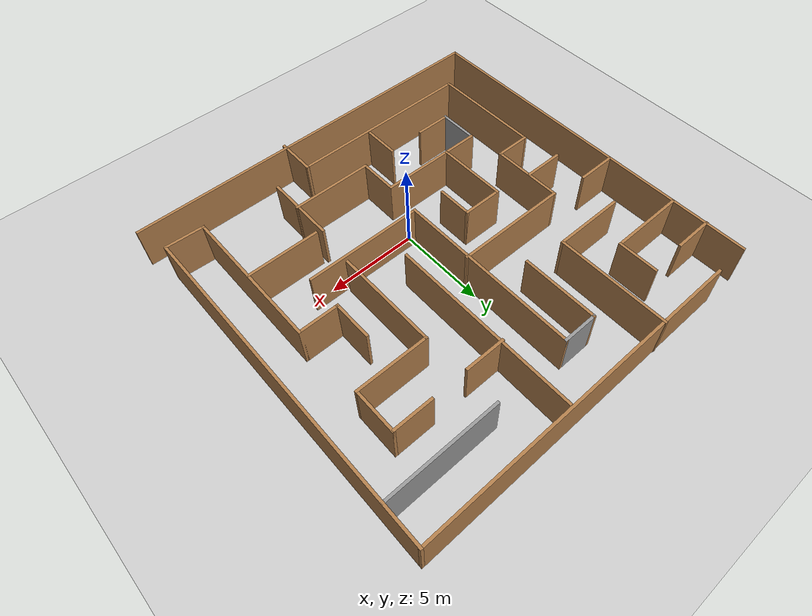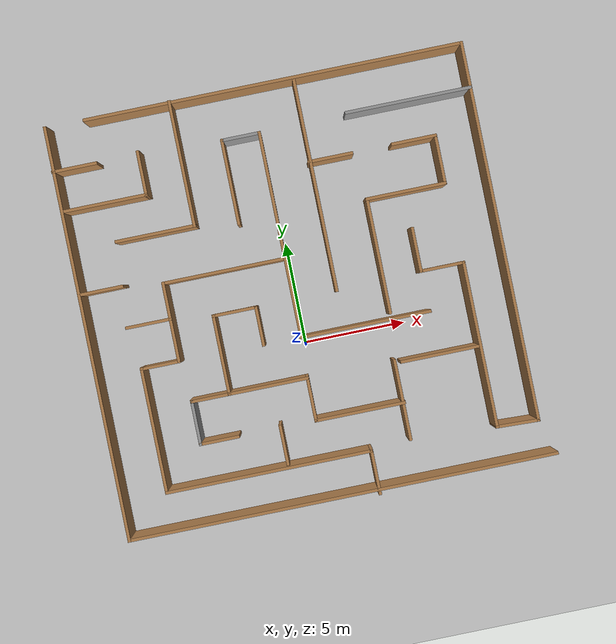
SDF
<sdf version="1.6">
 <world name="default">
  <light name="sun" type="directional">
   <pose>0 0 10 0 -0 0</pose>
   <diffuse>0.8 0.8 0.8 1</diffuse>
   <specular>0.1 0.1 0.1 1</specular>
   <attenuation>
    <range>1000</range>
    <constant>0.9</constant>
    <linear>0.01</linear>
    <quadratic>0.001</quadratic>
   </attenuation>
   <direction>-0.5 0.5 -1</direction>
  </light>
  <model name="ground_plane">
   <static>1</static>
   <link name="link">
    <collision name="collision">
     <geometry><plane><normal>0 0 1</normal><size>100 100</size></plane></geometry>
     <surface><friction><ode><mu>100</mu><mu2>50</mu2></ode></friction></surface>
    </collision>
    <visual name="visual">
     <cast_shadows>0</cast_shadows>
     <geometry><plane><normal>0 0 1</normal><size>100 100</size></plane></geometry>
     <material>
      <script><uri>file://media/materials/scripts/gazebo.material</uri><name>Gazebo/Grey</name></script>
     </material>
    </visual>
   </link>
  </model>
  <gravity>0 0 -9.8</gravity>
  <magnetic_field>6e-06 2.3e-05 -4.2e-05</magnetic_field>
  <atmosphere type="adiabatic"/>
  <physics name="default_physics" default="0" type="ode">
   <max_step_size>0.001</max_step_size>
   <real_time_factor>1</real_time_factor>
   <real_time_update_rate>1000</real_time_update_rate>
  </physics>
  <scene><ambient>0.4 0.4 0.4 1</ambient><background>0.7 0.7 0.7 1</background><shadows>1</shadows></scene>
  <spherical_coordinates>
   <surface_model>EARTH_WGS84</surface_model>
   <latitude_deg>0</latitude_deg>
   <longitude_deg>0</longitude_deg>
   <elevation>0</elevation>
   <heading_deg>0</heading_deg>
  </spherical_coordinates>
  <model name="maze_0">
   <pose>0.261534 2.49597 0 0 -0 0</pose>
   <link name="Wall_0">
    <collision name="Wall_0_Collision">
     <geometry><box><size>20.5 0.15 2.5</size></box></geometry>
     <pose>0 0 1.25 0 -0 0</pose>
    </collision>
    <visual name="Wall_0_Visual">
     <pose>0 0 1.25 0 -0 0</pose>
     <geometry><box><size>20.5 0.15 2.5</size></box></geometry>
     <material>
      <script><uri>file://media/materials/scripts/gazebo.material</uri><name>Gazebo/Wood</name></script>
      <ambient>1 1 1 1</ambient>
     </material>
    </visual>
    <pose>-10.5327 0.080532 0 0 0 -1.5708</pose>
   </link>
   <link name="Wall_1">
    <collision name="Wall_1_Collision">
     <geometry><box><size>21.25 0.15 2.5</size></box></geometry>
     <pose>0 0 1.25 0 -0 0</pose>
    </collision>
    <visual name="Wall_1_Visual">
     <pose>0 0 1.25 0 -0 0</pose>
     <geometry><box><size>21.25 0.15 2.5</size></box></geometry>
     <material>
      <script><uri>file://media/materials/scripts/gazebo.material</uri><name>Gazebo/Wood</name></script>
      <ambient>1 1 1 1</ambient>
     </material>
    </visual>
    <pose>0.017272 -10.0945 0 0 -0 0</pose>
   </link>
   <link name="Wall_11">
    <collision name="Wall_11_Collision">
     <geometry><box><size>2.25 0.15 2.5</size></box></geometry>
     <pose>0 0 1.25 0 -0 0</pose>
    </collision>
    <visual name="Wall_11_Visual">
     <pose>0 0 1.25 0 -0 0</pose>
     <geometry><box><size>2.25 0.15 2.5</size></box></geometry>
     <material>
      <script><uri>file://media/materials/scripts/gazebo.material</uri><name>Gazebo/Wood</name></script>
      <ambient>1 1 1 1</ambient>
     </material>
    </visual>
    <pose>-9.47116 2.01796 0 0 -0 0</pose>
   </link>
   <link name="Wall_13">
    <collision name="Wall_13_Collision">
     <geometry><box><size>6.25 0.15 2.5</size></box></geometry>
     <pose>0 0 1.25 0 -0 0</pose>
    </collision>
    <visual name="Wall_13_Visual">
     <pose>0 0 1.25 0 -0 0</pose>
     <geometry><box><size>6.25 0.15 2.5</size></box></geometry>
     <material>
      <script><uri>file://media/materials/scripts/gazebo.material</uri><name>Gazebo/Wood</name></script>
      <ambient>1 1 1 1</ambient>
     </material>
    </visual>
    <pose>-4.39461 7.23933 0 0 0 -1.5708</pose>
   </link>
   <link name="Wall_14">
    <collision name="Wall_14_Collision">
     <geometry><box><size>4 0.15 2.5</size></box></geometry>
     <pose>0 0 1.25 0 -0 0</pose>
    </collision>
    <visual name="Wall_14_Visual">
     <pose>0 0 1.25 0 -0 0</pose>
     <geometry><box><size>4 0.15 2.5</size></box></geometry>
     <material>
      <script><uri>file://media/materials/scripts/gazebo.material</uri><name>Gazebo/Wood</name></script>
      <ambient>1 1 1 1</ambient>
     </material>
    </visual>
    <pose>-6.31961 4.18933 0 0 -0 3.14159</pose>
   </link>
   <link name="Wall_16">
    <collision name="Wall_16_Collision">
     <geometry><box><size>4.25 0.15 2.5</size></box></geometry>
     <pose>0 0 1.25 0 -0 0</pose>
    </collision>
    <visual name="Wall_16_Visual">
     <pose>0 0 1.25 0 -0 0</pose>
     <geometry><box><size>4.25 0.15 2.5</size></box></geometry>
     <material>
      <script><uri>file://media/materials/scripts/gazebo.material</uri><name>Gazebo/Wood</name></script>
      <ambient>1 1 1 1</ambient>
     </material>
    </visual>
    <pose>-2.27128 5.9059 0 0 -0 1.5708</pose>
   </link>
   <link name="Wall_17">
    <collision name="Wall_17_Collision">
     <geometry><box><size>2 0.15 2.5</size></box></geometry>
     <pose>0 0 1.25 0 -0 0</pose>
    </collision>
    <visual name="Wall_17_Visual">
     <pose>0 0 1.25 0 -0 0</pose>
     <geometry><box><size>2 0.15 2.5</size></box></geometry>
     <material>
      <script><uri>file://media/materials/scripts/gazebo.material</uri><name>Gazebo/Grey</name></script>
      <ambient>1 1 1 1</ambient>
     </material>
    </visual>
    <pose>-1.34628 7.9559 0 0 -0 0</pose>
   </link>
   <link name="Wall_18">
    <collision name="Wall_18_Collision">
     <geometry><box><size>10.25 0.15 2.5</size></box></geometry>
     <pose>0 0 1.25 0 -0 0</pose>
    </collision>
    <visual name="Wall_18_Visual">
     <pose>0 0 1.25 0 -0 0</pose>
     <geometry><box><size>10.25 0.15 2.5</size></box></geometry>
     <material>
      <script><uri>file://media/materials/scripts/gazebo.material</uri><name>Gazebo/Wood</name></script>
      <ambient>1 1 1 1</ambient>
     </material>
    </visual>
    <pose>-0.421277 2.9059 0 0 0 -1.5708</pose>
   </link>
   <link name="Wall_19">
    <collision name="Wall_19_Collision">
     <geometry><box><size>6.5 0.15 2.5</size></box></geometry>
     <pose>0 0 1.25 0 -0 0</pose>
    </collision>
    <visual name="Wall_19_Visual">
     <pose>0 0 1.25 0 -0 0</pose>
     <geometry><box><size>6.5 0.15 2.5</size></box></geometry>
     <material>
      <script><uri>file://media/materials/scripts/gazebo.material</uri><name>Gazebo/Wood</name></script>
      <ambient>1 1 1 1</ambient>
     </material>
    </visual>
    <pose>2.75372 -2.1441 0 0 -0 0</pose>
   </link>
   <link name="Wall_21">
    <collision name="Wall_21_Collision">
     <geometry><box><size>10.5 0.15 2.5</size></box></geometry>
     <pose>0 0 1.25 0 -0 0</pose>
    </collision>
    <visual name="Wall_21_Visual">
     <pose>0 0 1.25 0 -0 0</pose>
     <geometry><box><size>10.5 0.15 2.5</size></box></geometry>
     <material>
      <script><uri>file://media/materials/scripts/gazebo.material</uri><name>Gazebo/Wood</name></script>
      <ambient>1 1 1 1</ambient>
     </material>
    </visual>
    <pose>1.72642 4.92292 0 0 0 -1.5708</pose>
   </link>
   <link name="Wall_23">
    <collision name="Wall_23_Collision">
     <geometry><box><size>2.25 0.15 2.5</size></box></geometry>
     <pose>0 0 1.25 0 -0 0</pose>
    </collision>
    <visual name="Wall_23_Visual">
     <pose>0 0 1.25 0 -0 0</pose>
     <geometry><box><size>2.25 0.15 2.5</size></box></geometry>
     <material>
      <script><uri>file://media/materials/scripts/gazebo.material</uri><name>Gazebo/Wood</name></script>
      <ambient>1 1 1 1</ambient>
     </material>
    </visual>
    <pose>2.70629 6.10022 0 0 -0 0</pose>
   </link>
   <link name="Wall_25">
    <collision name="Wall_25_Collision">
     <geometry><box><size>6.25 0.15 2.5</size></box></geometry>
     <pose>0 0 1.25 0 -0 0</pose>
    </collision>
    <visual name="Wall_25_Visual">
     <pose>0 0 1.25 0 -0 0</pose>
     <geometry><box><size>6.25 0.15 2.5</size></box></geometry>
     <material>
      <script><uri>file://media/materials/scripts/gazebo.material</uri><name>Gazebo/Grey</name></script>
      <ambient>1 1 1 1</ambient>
     </material>
    </visual>
    <pose>6.95061 8.064 0 0 -0 0</pose>
   </link>
   <link name="Wall_29">
    <collision name="Wall_29_Collision">
     <geometry><box><size>2.25 0.15 2.5</size></box></geometry>
     <pose>0 0 1.25 0 -0 0</pose>
    </collision>
    <visual name="Wall_29_Visual">
     <pose>0 0 1.25 0 -0 0</pose>
     <geometry><box><size>2.25 0.15 2.5</size></box></geometry>
     <material>
      <script><uri>file://media/materials/scripts/gazebo.material</uri><name>Gazebo/Wood</name></script>
      <ambient>1 1 1 1</ambient>
     </material>
    </visual>
    <pose>1.80955 -9.23934 0 0 -0 1.5708</pose>
   </link>
   <link name="Wall_3">
    <collision name="Wall_3_Collision">
     <geometry><box><size>18.75 0.15 2.5</size></box></geometry>
     <pose>0 0 1.25 0 -0 0</pose>
    </collision>
    <visual name="Wall_3_Visual">
     <pose>0 0 1.25 0 -0 0</pose>
     <geometry><box><size>18.75 0.15 2.5</size></box></geometry>
     <material>
      <script><uri>file://media/materials/scripts/gazebo.material</uri><name>Gazebo/Wood</name></script>
      <ambient>1 1 1 1</ambient>
     </material>
    </visual>
    <pose>10.0199 0.954493 0 0 -0 1.5708</pose>
   </link>
   <link name="Wall_30">
    <collision name="Wall_30_Collision">
     <geometry><box><size>10.25 0.15 2.5</size></box></geometry>
     <pose>0 0 1.25 0 -0 0</pose>
    </collision>
    <visual name="Wall_30_Visual">
     <pose>0 0 1.25 0 -0 0</pose>
     <geometry><box><size>10.25 0.15 2.5</size></box></geometry>
     <material>
      <script><uri>file://media/materials/scripts/gazebo.material</uri><name>Gazebo/Wood</name></script>
      <ambient>1 1 1 1</ambient>
     </material>
    </visual>
    <pose>-3.24045 -8.18933 0 0 -0 3.14159</pose>
   </link>
   <link name="Wall_31">
    <collision name="Wall_31_Collision">
     <geometry><box><size>6.25 0.15 2.5</size></box></geometry>
     <pose>0 0 1.25 0 -0 0</pose>
    </collision>
    <visual name="Wall_31_Visual">
     <pose>0 0 1.25 0 -0 0</pose>
     <geometry><box><size>6.25 0.15 2.5</size></box></geometry>
     <material>
      <script><uri>file://media/materials/scripts/gazebo.material</uri><name>Gazebo/Wood</name></script>
      <ambient>1 1 1 1</ambient>
     </material>
    </visual>
    <pose>-8.29045 -5.13933 0 0 -0 1.5708</pose>
   </link>
   <link name="Wall_32">
    <collision name="Wall_32_Collision">
     <geometry><box><size>2 0.15 2.5</size></box></geometry>
     <pose>0 0 1.25 0 -0 0</pose>
    </collision>
    <visual name="Wall_32_Visual">
     <pose>0 0 1.25 0 -0 0</pose>
     <geometry><box><size>2 0.15 2.5</size></box></geometry>
     <material>
      <script><uri>file://media/materials/scripts/gazebo.material</uri><name>Gazebo/Wood</name></script>
      <ambient>1 1 1 1</ambient>
     </material>
    </visual>
    <pose>-7.36545 -2.08934 0 0 -0 0</pose>
   </link>
   <link name="Wall_33">
    <collision name="Wall_33_Collision">
     <geometry><box><size>4 0.15 2.5</size></box></geometry>
     <pose>0 0 1.25 0 -0 0</pose>
    </collision>
    <visual name="Wall_33_Visual">
     <pose>0 0 1.25 0 -0 0</pose>
     <geometry><box><size>4 0.15 2.5</size></box></geometry>
     <material>
      <script><uri>file://media/materials/scripts/gazebo.material</uri><name>Gazebo/Wood</name></script>
      <ambient>1 1 1 1</ambient>
     </material>
    </visual>
    <pose>-6.44045 -0.164335 0 0 -0 1.5708</pose>
   </link>
   <link name="Wall_34">
    <collision name="Wall_34_Collision">
     <geometry><box><size>6.25 0.15 2.5</size></box></geometry>
     <pose>0 0 1.25 0 -0 0</pose>
    </collision>
    <visual name="Wall_34_Visual">
     <pose>0 0 1.25 0 -0 0</pose>
     <geometry><box><size>6.25 0.15 2.5</size></box></geometry>
     <material>
      <script><uri>file://media/materials/scripts/gazebo.material</uri><name>Gazebo/Wood</name></script>
      <ambient>1 1 1 1</ambient>
     </material>
    </visual>
    <pose>-3.39045 1.76066 0 0 -0 0</pose>
   </link>
   <link name="Wall_36">
    <collision name="Wall_36_Collision">
     <geometry><box><size>2.25 0.15 2.5</size></box></geometry>
     <pose>0 0 1.25 0 -0 0</pose>
    </collision>
    <visual name="Wall_36_Visual">
     <pose>0 0 1.25 0 -0 0</pose>
     <geometry><box><size>2.25 0.15 2.5</size></box></geometry>
     <material>
      <script><uri>file://media/materials/scripts/gazebo.material</uri><name>Gazebo/Wood</name></script>
      <ambient>1 1 1 1</ambient>
     </material>
    </visual>
    <pose>-7.53476 -0.001091 0 0 -0 0</pose>
   </link>
   <link name="Wall_38">
    <collision name="Wall_38_Collision">
     <geometry><box><size>2 0.15 2.5</size></box></geometry>
     <pose>0 0 1.25 0 -0 0</pose>
    </collision>
    <visual name="Wall_38_Visual">
     <pose>0 0 1.25 0 -0 0</pose>
     <geometry><box><size>2 0.15 2.5</size></box></geometry>
     <material>
      <script><uri>file://media/materials/scripts/gazebo.material</uri><name>Gazebo/Wood</name></script>
      <ambient>1 1 1 1</ambient>
     </material>
    </visual>
    <pose>-2.27393 -1.19738 0 0 -0 1.5708</pose>
   </link>
   <link name="Wall_39">
    <collision name="Wall_39_Collision">
     <geometry><box><size>2.25 0.15 2.5</size></box></geometry>
     <pose>0 0 1.25 0 -0 0</pose>
    </collision>
    <visual name="Wall_39_Visual">
     <pose>0 0 1.25 0 -0 0</pose>
     <geometry><box><size>2.25 0.15 2.5</size></box></geometry>
     <material>
      <script><uri>file://media/materials/scripts/gazebo.material</uri><name>Gazebo/Wood</name></script>
      <ambient>1 1 1 1</ambient>
     </material>
    </visual>
    <pose>-3.32393 -0.272378 0 0 -0 3.14159</pose>
   </link>
   <link name="Wall_4">
    <collision name="Wall_4_Collision">
     <geometry><box><size>18.75 0.15 2.5</size></box></geometry>
     <pose>0 0 1.25 0 -0 0</pose>
    </collision>
    <visual name="Wall_4_Visual">
     <pose>0 0 1.25 0 -0 0</pose>
     <geometry><box><size>18.75 0.15 2.5</size></box></geometry>
     <material>
      <script><uri>file://media/materials/scripts/gazebo.material</uri><name>Gazebo/Wood</name></script>
      <ambient>1 1 1 1</ambient>
     </material>
    </visual>
    <pose>0.719895 10.2545 0 0 -0 3.14159</pose>
   </link>
   <link name="Wall_40">
    <collision name="Wall_40_Collision">
     <geometry><box><size>4 0.15 2.5</size></box></geometry>
     <pose>0 0 1.25 0 -0 0</pose>
    </collision>
    <visual name="Wall_40_Visual">
     <pose>0 0 1.25 0 -0 0</pose>
     <geometry><box><size>4 0.15 2.5</size></box></geometry>
     <material>
      <script><uri>file://media/materials/scripts/gazebo.material</uri><name>Gazebo/Wood</name></script>
      <ambient>1 1 1 1</ambient>
     </material>
    </visual>
    <pose>-4.37393 -2.19738 0 0 0 -1.5708</pose>
   </link>
   <link name="Wall_41">
    <collision name="Wall_41_Collision">
     <geometry><box><size>4 0.15 2.5</size></box></geometry>
     <pose>0 0 1.25 0 -0 0</pose>
    </collision>
    <visual name="Wall_41_Visual">
     <pose>0 0 1.25 0 -0 0</pose>
     <geometry><box><size>4 0.15 2.5</size></box></geometry>
     <material>
      <script><uri>file://media/materials/scripts/gazebo.material</uri><name>Gazebo/Wood</name></script>
      <ambient>1 1 1 1</ambient>
     </material>
    </visual>
    <pose>-2.44893 -4.12238 0 0 -0 0</pose>
   </link>
   <link name="Wall_42">
    <collision name="Wall_42_Collision">
     <geometry><box><size>2.25 0.15 2.5</size></box></geometry>
     <pose>0 0 1.25 0 -0 0</pose>
    </collision>
    <visual name="Wall_42_Visual">
     <pose>0 0 1.25 0 -0 0</pose>
     <geometry><box><size>2.25 0.15 2.5</size></box></geometry>
     <material>
      <script><uri>file://media/materials/scripts/gazebo.material</uri><name>Gazebo/Wood</name></script>
      <ambient>1 1 1 1</ambient>
     </material>
    </visual>
    <pose>-0.523928 -5.17238 0 0 0 -1.5708</pose>
   </link>
   <link name="Wall_43">
    <collision name="Wall_43_Collision">
     <geometry><box><size>4.5 0.15 2.5</size></box></geometry>
     <pose>0 0 1.25 0 -0 0</pose>
    </collision>
    <visual name="Wall_43_Visual">
     <pose>0 0 1.25 0 -0 0</pose>
     <geometry><box><size>4.5 0.15 2.5</size></box></geometry>
     <material>
      <script><uri>file://media/materials/scripts/gazebo.material</uri><name>Gazebo/Wood</name></script>
      <ambient>1 1 1 1</ambient>
     </material>
    </visual>
    <pose>1.65107 -6.22238 0 0 -0 0</pose>
   </link>
   <link name="Wall_45">
    <collision name="Wall_45_Collision">
     <geometry><box><size>2 0.15 2.5</size></box></geometry>
     <pose>0 0 1.25 0 -0 0</pose>
    </collision>
    <visual name="Wall_45_Visual">
     <pose>0 0 1.25 0 -0 0</pose>
     <geometry><box><size>2 0.15 2.5</size></box></geometry>
     <material>
      <script><uri>file://media/materials/scripts/gazebo.material</uri><name>Gazebo/Wood</name></script>
      <ambient>1 1 1 1</ambient>
     </material>
    </visual>
    <pose>-2.27393 -7.07782 0 0 0 -1.5708</pose>
   </link>
   <link name="Wall_47">
    <collision name="Wall_47_Collision">
     <geometry><box><size>2 0.15 2.5</size></box></geometry>
     <pose>0 0 1.25 0 -0 0</pose>
    </collision>
    <visual name="Wall_47_Visual">
     <pose>0 0 1.25 0 -0 0</pose>
     <geometry><box><size>2 0.15 2.5</size></box></geometry>
     <material>
      <script><uri>file://media/materials/scripts/gazebo.material</uri><name>Gazebo/Wood</name></script>
      <ambient>1 1 1 1</ambient>
     </material>
    </visual>
    <pose>-5.29893 -4.12238 0 0 -0 3.14159</pose>
   </link>
   <link name="Wall_48">
    <collision name="Wall_48_Collision">
     <geometry><box><size>2.25 0.15 2.5</size></box></geometry>
     <pose>0 0 1.25 0 -0 0</pose>
    </collision>
    <visual name="Wall_48_Visual">
     <pose>0 0 1.25 0 -0 0</pose>
     <geometry><box><size>2.25 0.15 2.5</size></box></geometry>
     <material>
      <script><uri>file://media/materials/scripts/gazebo.material</uri><name>Gazebo/Grey</name></script>
      <ambient>1 1 1 1</ambient>
     </material>
    </visual>
    <pose>-6.22393 -5.17238 0 0 0 -1.5708</pose>
   </link>
   <link name="Wall_49">
    <collision name="Wall_49_Collision">
     <geometry><box><size>2 0.15 2.5</size></box></geometry>
     <pose>0 0 1.25 0 -0 0</pose>
    </collision>
    <visual name="Wall_49_Visual">
     <pose>0 0 1.25 0 -0 0</pose>
     <geometry><box><size>2 0.15 2.5</size></box></geometry>
     <material>
      <script><uri>file://media/materials/scripts/gazebo.material</uri><name>Gazebo/Wood</name></script>
      <ambient>1 1 1 1</ambient>
     </material>
    </visual>
    <pose>-5.29893 -6.22238 0 0 -0 0</pose>
   </link>
   <link name="Wall_51">
    <collision name="Wall_51_Collision">
     <geometry><box><size>2.25 0.15 2.5</size></box></geometry>
     <pose>0 0 1.25 0 -0 0</pose>
    </collision>
    <visual name="Wall_51_Visual">
     <pose>0 0 1.25 0 -0 0</pose>
     <geometry><box><size>2.25 0.15 2.5</size></box></geometry>
     <material>
      <script><uri>file://media/materials/scripts/gazebo.material</uri><name>Gazebo/Wood</name></script>
      <ambient>1 1 1 1</ambient>
     </material>
    </visual>
    <pose>6.84215 6.12416 0 0 -0 0</pose>
   </link>
   <link name="Wall_52">
    <collision name="Wall_52_Collision">
     <geometry><box><size>2.5 0.15 2.5</size></box></geometry>
     <pose>0 0 1.25 0 -0 0</pose>
    </collision>
    <visual name="Wall_52_Visual">
     <pose>0 0 1.25 0 -0 0</pose>
     <geometry><box><size>2.5 0.15 2.5</size></box></geometry>
     <material>
      <script><uri>file://media/materials/scripts/gazebo.material</uri><name>Gazebo/Wood</name></script>
      <ambient>1 1 1 1</ambient>
     </material>
    </visual>
    <pose>7.89215 4.94916 0 0 0 -1.5708</pose>
   </link>
   <link name="Wall_53">
    <collision name="Wall_53_Collision">
     <geometry><box><size>4 0.15 2.5</size></box></geometry>
     <pose>0 0 1.25 0 -0 0</pose>
    </collision>
    <visual name="Wall_53_Visual">
     <pose>0 0 1.25 0 -0 0</pose>
     <geometry><box><size>4 0.15 2.5</size></box></geometry>
     <material>
      <script><uri>file://media/materials/scripts/gazebo.material</uri><name>Gazebo/Wood</name></script>
      <ambient>1 1 1 1</ambient>
     </material>
    </visual>
    <pose>5.96715 3.77416 0 0 -0 3.14159</pose>
   </link>
   <link name="Wall_54">
    <collision name="Wall_54_Collision">
     <geometry><box><size>5.75 0.15 2.5</size></box></geometry>
     <pose>0 0 1.25 0 -0 0</pose>
    </collision>
    <visual name="Wall_54_Visual">
     <pose>0 0 1.25 0 -0 0</pose>
     <geometry><box><size>5.75 0.15 2.5</size></box></geometry>
     <material>
      <script><uri>file://media/materials/scripts/gazebo.material</uri><name>Gazebo/Wood</name></script>
      <ambient>1 1 1 1</ambient>
     </material>
    </visual>
    <pose>4.04215 0.974164 0 0 0 -1.5708</pose>
   </link>
   <link name="Wall_56">
    <collision name="Wall_56_Collision">
     <geometry><box><size>2.25 0.15 2.5</size></box></geometry>
     <pose>0 0 1.25 0 -0 0</pose>
    </collision>
    <visual name="Wall_56_Visual">
     <pose>0 0 1.25 0 -0 0</pose>
     <geometry><box><size>2.25 0.15 2.5</size></box></geometry>
     <material>
      <script><uri>file://media/materials/scripts/gazebo.material</uri><name>Gazebo/Wood</name></script>
      <ambient>1 1 1 1</ambient>
     </material>
    </visual>
    <pose>5.89822 0.884621 0 0 0 -1.5708</pose>
   </link>
   <link name="Wall_57">
    <collision name="Wall_57_Collision">
     <geometry><box><size>2.25 0.15 2.5</size></box></geometry>
     <pose>0 0 1.25 0 -0 0</pose>
    </collision>
    <visual name="Wall_57_Visual">
     <pose>0 0 1.25 0 -0 0</pose>
     <geometry><box><size>2.25 0.15 2.5</size></box></geometry>
     <material>
      <script><uri>file://media/materials/scripts/gazebo.material</uri><name>Gazebo/Wood</name></script>
      <ambient>1 1 1 1</ambient>
     </material>
    </visual>
    <pose>6.94822 -0.165379 0 0 -0 0</pose>
   </link>
   <link name="Wall_58">
    <collision name="Wall_58_Collision">
     <geometry><box><size>8.25 0.15 2.5</size></box></geometry>
     <pose>0 0 1.25 0 -0 0</pose>
    </collision>
    <visual name="Wall_58_Visual">
     <pose>0 0 1.25 0 -0 0</pose>
     <geometry><box><size>8.25 0.15 2.5</size></box></geometry>
     <material>
      <script><uri>file://media/materials/scripts/gazebo.material</uri><name>Gazebo/Wood</name></script>
      <ambient>1 1 1 1</ambient>
     </material>
    </visual>
    <pose>7.99822 -4.21538 0 0 0 -1.5708</pose>
   </link>
   <link name="Wall_59">
    <collision name="Wall_59_Collision">
     <geometry><box><size>2.17326 0.15 2.5</size></box></geometry>
     <pose>0 0 1.25 0 -0 0</pose>
    </collision>
    <visual name="Wall_59_Visual">
     <pose>0 0 1.25 0 -0 0</pose>
     <geometry><box><size>2.17326 0.15 2.5</size></box></geometry>
     <material>
      <script><uri>file://media/materials/scripts/gazebo.material</uri><name>Gazebo/Wood</name></script>
      <ambient>1 1 1 1</ambient>
     </material>
    </visual>
    <pose>9.00906 -8.30544 0 0 0 -0.039614</pose>
   </link>
   <link name="Wall_6">
    <collision name="Wall_6_Collision">
     <geometry><box><size>2.25 0.15 2.5</size></box></geometry>
     <pose>0 0 1.25 0 -0 0</pose>
    </collision>
    <visual name="Wall_6_Visual">
     <pose>0 0 1.25 0 -0 0</pose>
     <geometry><box><size>2.25 0.15 2.5</size></box></geometry>
     <material>
      <script><uri>file://media/materials/scripts/gazebo.material</uri><name>Gazebo/Wood</name></script>
      <ambient>1 1 1 1</ambient>
     </material>
    </visual>
    <pose>-9.51727 8.10514 0 0 -0 0</pose>
   </link>
   <link name="Wall_61">
    <collision name="Wall_61_Collision">
     <geometry><box><size>4 0.15 2.5</size></box></geometry>
     <pose>0 0 1.25 0 -0 0</pose>
    </collision>
    <visual name="Wall_61_Visual">
     <pose>0 0 1.25 0 -0 0</pose>
     <geometry><box><size>4 0.15 2.5</size></box></geometry>
     <material>
      <script><uri>file://media/materials/scripts/gazebo.material</uri><name>Gazebo/Wood</name></script>
      <ambient>1 1 1 1</ambient>
     </material>
    </visual>
    <pose>6.04147 -4.27014 0 0 -0 3.14159</pose>
   </link>
   <link name="Wall_63">
    <collision name="Wall_63_Collision">
     <geometry><box><size>4 0.15 2.5</size></box></geometry>
     <pose>0 0 1.25 0 -0 0</pose>
    </collision>
    <visual name="Wall_63_Visual">
     <pose>0 0 1.25 0 -0 0</pose>
     <geometry><box><size>4 0.15 2.5</size></box></geometry>
     <material>
      <script><uri>file://media/materials/scripts/gazebo.material</uri><name>Gazebo/Wood</name></script>
      <ambient>1 1 1 1</ambient>
     </material>
    </visual>
    <pose>3.77693 -6.08908 0 0 0 -1.5708</pose>
   </link>
   <link name="Wall_8">
    <collision name="Wall_8_Collision">
     <geometry><box><size>4.25 0.15 2.5</size></box></geometry>
     <pose>0 0 1.25 0 -0 0</pose>
    </collision>
    <visual name="Wall_8_Visual">
     <pose>0 0 1.25 0 -0 0</pose>
     <geometry><box><size>4.25 0.15 2.5</size></box></geometry>
     <material>
      <script><uri>file://media/materials/scripts/gazebo.material</uri><name>Gazebo/Wood</name></script>
      <ambient>1 1 1 1</ambient>
     </material>
    </visual>
    <pose>-8.42504 6.12219 0 0 -0 0</pose>
   </link>
   <link name="Wall_9">
    <collision name="Wall_9_Collision">
     <geometry><box><size>2.25 0.15 2.5</size></box></geometry>
     <pose>0 0 1.25 0 -0 0</pose>
    </collision>
    <visual name="Wall_9_Visual">
     <pose>0 0 1.25 0 -0 0</pose>
     <geometry><box><size>2.25 0.15 2.5</size></box></geometry>
     <material>
      <script><uri>file://media/materials/scripts/gazebo.material</uri><name>Gazebo/Wood</name></script>
      <ambient>1 1 1 1</ambient>
     </material>
    </visual>
    <pose>-6.37504 7.17219 0 0 -0 1.5708</pose>
   </link>
   <static>1</static>
  </model>
 </world>
</sdf>
